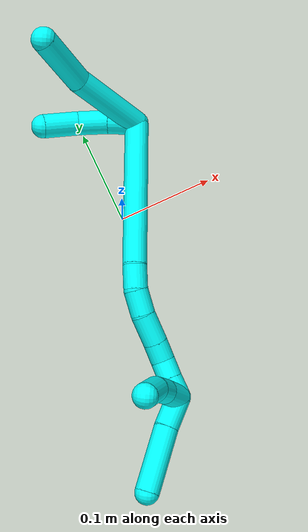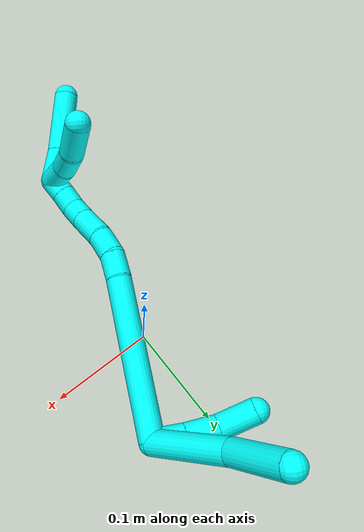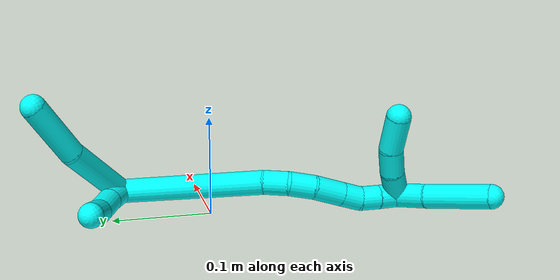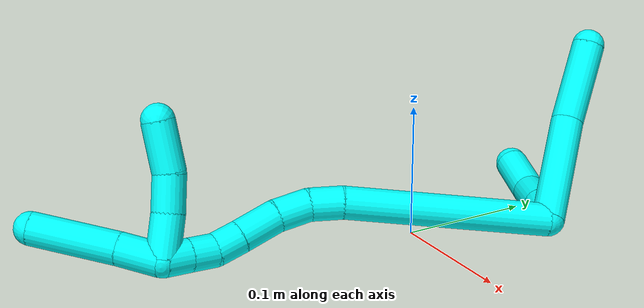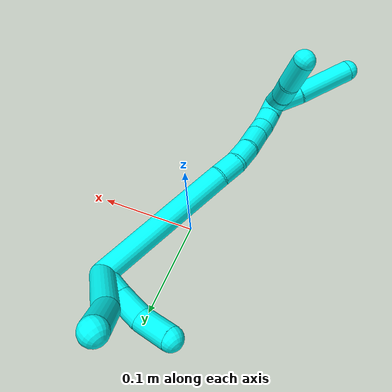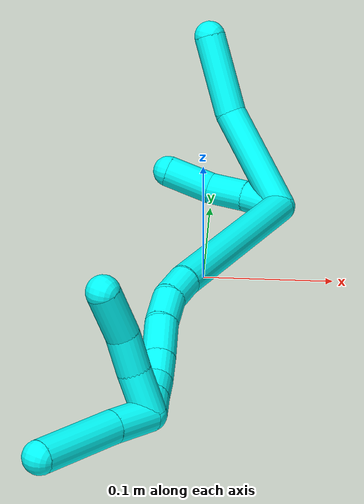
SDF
<sdf version="1.7">
 <world name="default">
  <model name="3">
   <static>0</static>
   <link name="3">
    <collision name="collision-cylinder-e_1_2_8">
     <pose>-0.030517 -0.000425 -0.030106 3.12749 -0.792118 -3.10786</pose>
     <geometry><cylinder><radius>0.0125</radius><length>0.08574</length></cylinder></geometry>
     <surface>
      <friction><ode><mu>1.16</mu><mu2>1.16</mu2><slip1>0</slip1><slip2>0</slip2></ode></friction>
      <contact><ode><kp>1e+06</kp><kd>1</kd><max_vel>0</max_vel><min_depth>0.001</min_depth></ode></contact>
     </surface>
    </collision>
    <visual name="visual-cylinder-e_1_2_8">
     <pose>-0.030517 -0.000425 -0.030106 3.12749 -0.792118 -3.10786</pose>
     <geometry><cylinder><radius>0.0125</radius><length>0.08574</length></cylinder></geometry>
     <material><ambient>0.003922 1 0.996078 1</ambient></material>
    </visual>
    <collision name="collision-cylinder-e_2_8_6">
     <pose>-0.088897 -0.001593 -0.076194 3.09512 -1.0496 -3.06135</pose>
     <geometry><cylinder><radius>0.0125</radius><length>0.06426</length></cylinder></geometry>
     <surface>
      <friction><ode><mu>1.16</mu><mu2>1.16</mu2><slip1>0</slip1><slip2>0</slip2></ode></friction>
      <contact><ode><kp>1e+06</kp><kd>1</kd><max_vel>0</max_vel><min_depth>0.001</min_depth></ode></contact>
     </surface>
    </collision>
    <visual name="visual-cylinder-e_2_8_6">
     <pose>-0.088897 -0.001593 -0.076194 3.09512 -1.0496 -3.06135</pose>
     <geometry><cylinder><radius>0.0125</radius><length>0.06426</length></cylinder></geometry>
     <material><ambient>0.003922 1 0.996078 1</ambient></material>
    </visual>
    <collision name="collision-cylinder-e_1_2_9">
     <pose>8.7e-05 -0.000559 -0.015392 3.10531 0.005655 0.309189</pose>
     <geometry><cylinder><radius>0.0125</radius><length>0.030804</length></cylinder></geometry>
     <surface>
      <friction><ode><mu>1.16</mu><mu2>1.16</mu2><slip1>0</slip1><slip2>0</slip2></ode></friction>
      <contact><ode><kp>1e+06</kp><kd>1</kd><max_vel>0</max_vel><min_depth>0.001</min_depth></ode></contact>
     </surface>
    </collision>
    <visual name="visual-cylinder-e_1_2_9">
     <pose>8.7e-05 -0.000559 -0.015392 3.10531 0.005655 0.309189</pose>
     <geometry><cylinder><radius>0.0125</radius><length>0.030804</length></cylinder></geometry>
     <material><ambient>0.003922 1 0.996078 1</ambient></material>
    </visual>
    <collision name="collision-cylinder-e_2_9_10">
     <pose>0.001306 -0.002672 -0.046521 3.04316 0.071467 1.25562</pose>
     <geometry><cylinder><radius>0.0125</radius><length>0.031709</length></cylinder></geometry>
     <surface>
      <friction><ode><mu>1.16</mu><mu2>1.16</mu2><slip1>0</slip1><slip2>0</slip2></ode></friction>
      <contact><ode><kp>1e+06</kp><kd>1</kd><max_vel>0</max_vel><min_depth>0.001</min_depth></ode></contact>
     </surface>
    </collision>
    <visual name="visual-cylinder-e_2_9_10">
     <pose>0.001306 -0.002672 -0.046521 3.04316 0.071467 1.25562</pose>
     <geometry><cylinder><radius>0.0125</radius><length>0.031709</length></cylinder></geometry>
     <material><ambient>0.003922 1 0.996078 1</ambient></material>
    </visual>
    <collision name="collision-cylinder-e_3_10_5">
     <pose>-0.000286 -0.010166 -0.079825 2.81553 -0.145873 -0.836022</pose>
     <geometry><cylinder><radius>0.0125</radius><length>0.037487</length></cylinder></geometry>
     <surface>
      <friction><ode><mu>1.16</mu><mu2>1.16</mu2><slip1>0</slip1><slip2>0</slip2></ode></friction>
      <contact><ode><kp>1e+06</kp><kd>1</kd><max_vel>0</max_vel><min_depth>0.001</min_depth></ode></contact>
     </surface>
    </collision>
    <visual name="visual-cylinder-e_3_10_5">
     <pose>-0.000286 -0.010166 -0.079825 2.81553 -0.145873 -0.836022</pose>
     <geometry><cylinder><radius>0.0125</radius><length>0.037487</length></cylinder></geometry>
     <material><ambient>0.003922 1 0.996078 1</ambient></material>
    </visual>
    <collision name="collision-cylinder-e_1_2_11">
     <pose>0.019563 -0.075158 0.005287 1.50056 0.254046 0.236968</pose>
     <geometry><cylinder><radius>0.0125</radius><length>0.155684</length></cylinder></geometry>
     <surface>
      <friction><ode><mu>1.16</mu><mu2>1.16</mu2><slip1>0</slip1><slip2>0</slip2></ode></friction>
      <contact><ode><kp>1e+06</kp><kd>1</kd><max_vel>0</max_vel><min_depth>0.001</min_depth></ode></contact>
     </surface>
    </collision>
    <visual name="visual-cylinder-e_1_2_11">
     <pose>0.019563 -0.075158 0.005287 1.50056 0.254046 0.236968</pose>
     <geometry><cylinder><radius>0.0125</radius><length>0.155684</length></cylinder></geometry>
     <material><ambient>0.003922 1 0.996078 1</ambient></material>
    </visual>
    <collision name="collision-cylinder-e_2_11_12">
     <pose>0.043935 -0.162003 0.012125 1.43888 0.387187 0.34019</pose>
     <geometry><cylinder><radius>0.0125</radius><length>0.025465</length></cylinder></geometry>
     <surface>
      <friction><ode><mu>1.16</mu><mu2>1.16</mu2><slip1>0</slip1><slip2>0</slip2></ode></friction>
      <contact><ode><kp>1e+06</kp><kd>1</kd><max_vel>0</max_vel><min_depth>0.001</min_depth></ode></contact>
     </surface>
    </collision>
    <visual name="visual-cylinder-e_2_11_12">
     <pose>0.043935 -0.162003 0.012125 1.43888 0.387187 0.34019</pose>
     <geometry><cylinder><radius>0.0125</radius><length>0.025465</length></cylinder></geometry>
     <material><ambient>0.003922 1 0.996078 1</ambient></material>
    </visual>
    <collision name="collision-cylinder-e_3_12_13">
     <pose>0.055471 -0.183947 0.018357 1.14268 0.538089 0.350866</pose>
     <geometry><cylinder><radius>0.0125</radius><length>0.026257</length></cylinder></geometry>
     <surface>
      <friction><ode><mu>1.16</mu><mu2>1.16</mu2><slip1>0</slip1><slip2>0</slip2></ode></friction>
      <contact><ode><kp>1e+06</kp><kd>1</kd><max_vel>0</max_vel><min_depth>0.001</min_depth></ode></contact>
     </surface>
    </collision>
    <visual name="visual-cylinder-e_3_12_13">
     <pose>0.055471 -0.183947 0.018357 1.14268 0.538089 0.350866</pose>
     <geometry><cylinder><radius>0.0125</radius><length>0.026257</length></cylinder></geometry>
     <material><ambient>0.003922 1 0.996078 1</ambient></material>
    </visual>
    <collision name="collision-cylinder-e_4_13_14">
     <pose>0.071609 -0.204387 0.030346 0.948299 0.643946 0.339098</pose>
     <geometry><cylinder><radius>0.0125</radius><length>0.031349</length></cylinder></geometry>
     <surface>
      <friction><ode><mu>1.16</mu><mu2>1.16</mu2><slip1>0</slip1><slip2>0</slip2></ode></friction>
      <contact><ode><kp>1e+06</kp><kd>1</kd><max_vel>0</max_vel><min_depth>0.001</min_depth></ode></contact>
     </surface>
    </collision>
    <visual name="visual-cylinder-e_4_13_14">
     <pose>0.071609 -0.204387 0.030346 0.948299 0.643946 0.339098</pose>
     <geometry><cylinder><radius>0.0125</radius><length>0.031349</length></cylinder></geometry>
     <material><ambient>0.003922 1 0.996078 1</ambient></material>
    </visual>
    <collision name="collision-cylinder-e_5_14_15">
     <pose>0.087238 -0.221608 0.042255 0.991735 0.636904 0.352961</pose>
     <geometry><cylinder><radius>0.0125</radius><length>0.020915</length></cylinder></geometry>
     <surface>
      <friction><ode><mu>1.16</mu><mu2>1.16</mu2><slip1>0</slip1><slip2>0</slip2></ode></friction>
      <contact><ode><kp>1e+06</kp><kd>1</kd><max_vel>0</max_vel><min_depth>0.001</min_depth></ode></contact>
     </surface>
    </collision>
    <visual name="visual-cylinder-e_5_14_15">
     <pose>0.087238 -0.221608 0.042255 0.991735 0.636904 0.352961</pose>
     <geometry><cylinder><radius>0.0125</radius><length>0.020915</length></cylinder></geometry>
     <material><ambient>0.003922 1 0.996078 1</ambient></material>
    </visual>
    <collision name="collision-cylinder-e_6_15_16">
     <pose>0.096665 -0.237002 0.051315 1.08068 0.326534 0.197004</pose>
     <geometry><cylinder><radius>0.0125</radius><length>0.020003</length></cylinder></geometry>
     <surface>
      <friction><ode><mu>1.16</mu><mu2>1.16</mu2><slip1>0</slip1><slip2>0</slip2></ode></friction>
      <contact><ode><kp>1e+06</kp><kd>1</kd><max_vel>0</max_vel><min_depth>0.001</min_depth></ode></contact>
     </surface>
    </collision>
    <visual name="visual-cylinder-e_6_15_16">
     <pose>0.096665 -0.237002 0.051315 1.08068 0.326534 0.197004</pose>
     <geometry><cylinder><radius>0.0125</radius><length>0.020003</length></cylinder></geometry>
     <material><ambient>0.003922 1 0.996078 1</ambient></material>
    </visual>
    <collision name="collision-cylinder-e_7_16_1">
     <pose>0.102904 -0.253687 0.060751 1.03218 0.302767 0.172679</pose>
     <geometry><cylinder><radius>0.0125</radius><length>0.020327</length></cylinder></geometry>
     <surface>
      <friction><ode><mu>1.16</mu><mu2>1.16</mu2><slip1>0</slip1><slip2>0</slip2></ode></friction>
      <contact><ode><kp>1e+06</kp><kd>1</kd><max_vel>0</max_vel><min_depth>0.001</min_depth></ode></contact>
     </surface>
    </collision>
    <visual name="visual-cylinder-e_7_16_1">
     <pose>0.102904 -0.253687 0.060751 1.03218 0.302767 0.172679</pose>
     <geometry><cylinder><radius>0.0125</radius><length>0.020327</length></cylinder></geometry>
     <material><ambient>0.003922 1 0.996078 1</ambient></material>
    </visual>
    <collision name="collision-cylinder-e_1_1_17">
     <pose>0.091581 -0.265667 0.058111 2.69442 -1.03893 -2.38466</pose>
     <geometry><cylinder><radius>0.0125</radius><length>0.033309</length></cylinder></geometry>
     <surface>
      <friction><ode><mu>1.16</mu><mu2>1.16</mu2><slip1>0</slip1><slip2>0</slip2></ode></friction>
      <contact><ode><kp>1e+06</kp><kd>1</kd><max_vel>0</max_vel><min_depth>0.001</min_depth></ode></contact>
     </surface>
    </collision>
    <visual name="visual-cylinder-e_1_1_17">
     <pose>0.091581 -0.265667 0.058111 2.69442 -1.03893 -2.38466</pose>
     <geometry><cylinder><radius>0.0125</radius><length>0.033309</length></cylinder></geometry>
     <material><ambient>0.003922 1 0.996078 1</ambient></material>
    </visual>
    <collision name="collision-cylinder-e_2_17_18">
     <pose>0.064562 -0.273829 0.045701 2.38686 -1.09149 -1.98504</pose>
     <geometry><cylinder><radius>0.0125</radius><length>0.028547</length></cylinder></geometry>
     <surface>
      <friction><ode><mu>1.16</mu><mu2>1.16</mu2><slip1>0</slip1><slip2>0</slip2></ode></friction>
      <contact><ode><kp>1e+06</kp><kd>1</kd><max_vel>0</max_vel><min_depth>0.001</min_depth></ode></contact>
     </surface>
    </collision>
    <visual name="visual-cylinder-e_2_17_18">
     <pose>0.064562 -0.273829 0.045701 2.38686 -1.09149 -1.98504</pose>
     <geometry><cylinder><radius>0.0125</radius><length>0.028547</length></cylinder></geometry>
     <material><ambient>0.003922 1 0.996078 1</ambient></material>
    </visual>
    <collision name="collision-cylinder-e_3_18_4">
     <pose>0.036538 -0.288545 0.036039 2.01574 -0.936194 -1.35092</pose>
     <geometry><cylinder><radius>0.0125</radius><length>0.038144</length></cylinder></geometry>
     <surface>
      <friction><ode><mu>1.16</mu><mu2>1.16</mu2><slip1>0</slip1><slip2>0</slip2></ode></friction>
      <contact><ode><kp>1e+06</kp><kd>1</kd><max_vel>0</max_vel><min_depth>0.001</min_depth></ode></contact>
     </surface>
    </collision>
    <visual name="visual-cylinder-e_3_18_4">
     <pose>0.036538 -0.288545 0.036039 2.01574 -0.936194 -1.35092</pose>
     <geometry><cylinder><radius>0.0125</radius><length>0.038144</length></cylinder></geometry>
     <material><ambient>0.003922 1 0.996078 1</ambient></material>
    </visual>
    <collision name="collision-cylinder-e_1_1_19">
     <pose>0.109516 -0.277338 0.060625 1.89219 0.218221 0.301554</pose>
     <geometry><cylinder><radius>0.0125</radius><length>0.033084</length></cylinder></geometry>
     <surface>
      <friction><ode><mu>1.16</mu><mu2>1.16</mu2><slip1>0</slip1><slip2>0</slip2></ode></friction>
      <contact><ode><kp>1e+06</kp><kd>1</kd><max_vel>0</max_vel><min_depth>0.001</min_depth></ode></contact>
     </surface>
    </collision>
    <visual name="visual-cylinder-e_1_1_19">
     <pose>0.109516 -0.277338 0.060625 1.89219 0.218221 0.301554</pose>
     <geometry><cylinder><radius>0.0125</radius><length>0.033084</length></cylinder></geometry>
     <material><ambient>0.003922 1 0.996078 1</ambient></material>
    </visual>
    <collision name="collision-cylinder-e_2_19_3">
     <pose>0.120409 -0.324512 0.048349 1.79237 0.22034 0.274873</pose>
     <geometry><cylinder><radius>0.0125</radius><length>0.066916</length></cylinder></geometry>
     <surface>
      <friction><ode><mu>1.16</mu><mu2>1.16</mu2><slip1>0</slip1><slip2>0</slip2></ode></friction>
      <contact><ode><kp>1e+06</kp><kd>1</kd><max_vel>0</max_vel><min_depth>0.001</min_depth></ode></contact>
     </surface>
    </collision>
    <visual name="visual-cylinder-e_2_19_3">
     <pose>0.120409 -0.324512 0.048349 1.79237 0.22034 0.274873</pose>
     <geometry><cylinder><radius>0.0125</radius><length>0.066916</length></cylinder></geometry>
     <material><ambient>0.003922 1 0.996078 1</ambient></material>
    </visual>
    <collision name="collision-sphere-3">
     <pose>0.127722 -0.356362 0.041174 0 -0 0</pose>
     <geometry><sphere><radius>0.0125</radius></sphere></geometry>
     <surface>
      <friction><ode><mu>1.16</mu><mu2>1.16</mu2><slip1>0</slip1><slip2>0</slip2></ode></friction>
      <contact><ode><kp>1e+06</kp><kd>1</kd><max_vel>0</max_vel><min_depth>0.001</min_depth></ode></contact>
     </surface>
    </collision>
    <visual name="visual-sphere-3">
     <pose>0.127722 -0.356362 0.041174 0 -0 0</pose>
     <geometry><sphere><radius>0.0125</radius></sphere></geometry>
     <material><ambient>0.003922 1 0.996078 1</ambient></material>
    </visual>
    <collision name="collision-sphere-19">
     <pose>0.113097 -0.292661 0.055524 0 -0 0</pose>
     <geometry><sphere><radius>0.0125</radius></sphere></geometry>
     <surface>
      <friction><ode><mu>1.16</mu><mu2>1.16</mu2><slip1>0</slip1><slip2>0</slip2></ode></friction>
      <contact><ode><kp>1e+06</kp><kd>1</kd><max_vel>0</max_vel><min_depth>0.001</min_depth></ode></contact>
     </surface>
    </collision>
    <visual name="visual-sphere-19">
     <pose>0.113097 -0.292661 0.055524 0 -0 0</pose>
     <geometry><sphere><radius>0.0125</radius></sphere></geometry>
     <material><ambient>0.003922 1 0.996078 1</ambient></material>
    </visual>
    <collision name="collision-sphere-5">
     <pose>-0.003011 -0.016106 -0.097393 0 -0 0</pose>
     <geometry><sphere><radius>0.0125</radius></sphere></geometry>
     <surface>
      <friction><ode><mu>1.16</mu><mu2>1.16</mu2><slip1>0</slip1><slip2>0</slip2></ode></friction>
      <contact><ode><kp>1e+06</kp><kd>1</kd><max_vel>0</max_vel><min_depth>0.001</min_depth></ode></contact>
     </surface>
    </collision>
    <visual name="visual-sphere-5">
     <pose>-0.003011 -0.016106 -0.097393 0 -0 0</pose>
     <geometry><sphere><radius>0.0125</radius></sphere></geometry>
     <material><ambient>0.003922 1 0.996078 1</ambient></material>
    </visual>
    <collision name="collision-sphere-10">
     <pose>0.002438 -0.004226 -0.062258 0 -0 0</pose>
     <geometry><sphere><radius>0.0125</radius></sphere></geometry>
     <surface>
      <friction><ode><mu>1.16</mu><mu2>1.16</mu2><slip1>0</slip1><slip2>0</slip2></ode></friction>
      <contact><ode><kp>1e+06</kp><kd>1</kd><max_vel>0</max_vel><min_depth>0.001</min_depth></ode></contact>
     </surface>
    </collision>
    <visual name="visual-sphere-10">
     <pose>0.002438 -0.004226 -0.062258 0 -0 0</pose>
     <geometry><sphere><radius>0.0125</radius></sphere></geometry>
     <material><ambient>0.003922 1 0.996078 1</ambient></material>
    </visual>
    <collision name="collision-sphere-6">
     <pose>-0.116761 -0.002336 -0.092174 0 -0 0</pose>
     <geometry><sphere><radius>0.0125</radius></sphere></geometry>
     <surface>
      <friction><ode><mu>1.16</mu><mu2>1.16</mu2><slip1>0</slip1><slip2>0</slip2></ode></friction>
      <contact><ode><kp>1e+06</kp><kd>1</kd><max_vel>0</max_vel><min_depth>0.001</min_depth></ode></contact>
     </surface>
    </collision>
    <visual name="visual-sphere-6">
     <pose>-0.116761 -0.002336 -0.092174 0 -0 0</pose>
     <geometry><sphere><radius>0.0125</radius></sphere></geometry>
     <material><ambient>0.003922 1 0.996078 1</ambient></material>
    </visual>
    <collision name="collision-sphere-9">
     <pose>0.000174 -0.001117 -0.030783 0 -0 0</pose>
     <geometry><sphere><radius>0.0125</radius></sphere></geometry>
     <surface>
      <friction><ode><mu>1.16</mu><mu2>1.16</mu2><slip1>0</slip1><slip2>0</slip2></ode></friction>
      <contact><ode><kp>1e+06</kp><kd>1</kd><max_vel>0</max_vel><min_depth>0.001</min_depth></ode></contact>
     </surface>
    </collision>
    <visual name="visual-sphere-9">
     <pose>0.000174 -0.001117 -0.030783 0 -0 0</pose>
     <geometry><sphere><radius>0.0125</radius></sphere></geometry>
     <material><ambient>0.003922 1 0.996078 1</ambient></material>
    </visual>
    <collision name="collision-sphere-2">
     <geometry><sphere><radius>0.0125</radius></sphere></geometry>
     <surface>
      <friction><ode><mu>1.16</mu><mu2>1.16</mu2><slip1>0</slip1><slip2>0</slip2></ode></friction>
      <contact><ode><kp>1e+06</kp><kd>1</kd><max_vel>0</max_vel><min_depth>0.001</min_depth></ode></contact>
     </surface>
    </collision>
    <visual name="visual-sphere-2">
     <geometry><sphere><radius>0.0125</radius></sphere></geometry>
     <material><ambient>0.003922 1 0.996078 1</ambient></material>
    </visual>
    <collision name="collision-sphere-8">
     <pose>-0.061034 -0.000849 -0.060213 0 -0 0</pose>
     <geometry><sphere><radius>0.0125</radius></sphere></geometry>
     <surface>
      <friction><ode><mu>1.16</mu><mu2>1.16</mu2><slip1>0</slip1><slip2>0</slip2></ode></friction>
      <contact><ode><kp>1e+06</kp><kd>1</kd><max_vel>0</max_vel><min_depth>0.001</min_depth></ode></contact>
     </surface>
    </collision>
    <visual name="visual-sphere-8">
     <pose>-0.061034 -0.000849 -0.060213 0 -0 0</pose>
     <geometry><sphere><radius>0.0125</radius></sphere></geometry>
     <material><ambient>0.003922 1 0.996078 1</ambient></material>
    </visual>
    <collision name="collision-sphere-11">
     <pose>0.039127 -0.150316 0.010575 0 -0 0</pose>
     <geometry><sphere><radius>0.0125</radius></sphere></geometry>
     <surface>
      <friction><ode><mu>1.16</mu><mu2>1.16</mu2><slip1>0</slip1><slip2>0</slip2></ode></friction>
      <contact><ode><kp>1e+06</kp><kd>1</kd><max_vel>0</max_vel><min_depth>0.001</min_depth></ode></contact>
     </surface>
    </collision>
    <visual name="visual-sphere-11">
     <pose>0.039127 -0.150316 0.010575 0 -0 0</pose>
     <geometry><sphere><radius>0.0125</radius></sphere></geometry>
     <material><ambient>0.003922 1 0.996078 1</ambient></material>
    </visual>
    <collision name="collision-sphere-12">
     <pose>0.048742 -0.173691 0.013676 0 -0 0</pose>
     <geometry><sphere><radius>0.0125</radius></sphere></geometry>
     <surface>
      <friction><ode><mu>1.16</mu><mu2>1.16</mu2><slip1>0</slip1><slip2>0</slip2></ode></friction>
      <contact><ode><kp>1e+06</kp><kd>1</kd><max_vel>0</max_vel><min_depth>0.001</min_depth></ode></contact>
     </surface>
    </collision>
    <visual name="visual-sphere-12">
     <pose>0.048742 -0.173691 0.013676 0 -0 0</pose>
     <geometry><sphere><radius>0.0125</radius></sphere></geometry>
     <material><ambient>0.003922 1 0.996078 1</ambient></material>
    </visual>
    <collision name="collision-sphere-13">
     <pose>0.062199 -0.194203 0.023037 0 -0 0</pose>
     <geometry><sphere><radius>0.0125</radius></sphere></geometry>
     <surface>
      <friction><ode><mu>1.16</mu><mu2>1.16</mu2><slip1>0</slip1><slip2>0</slip2></ode></friction>
      <contact><ode><kp>1e+06</kp><kd>1</kd><max_vel>0</max_vel><min_depth>0.001</min_depth></ode></contact>
     </surface>
    </collision>
    <visual name="visual-sphere-13">
     <pose>0.062199 -0.194203 0.023037 0 -0 0</pose>
     <geometry><sphere><radius>0.0125</radius></sphere></geometry>
     <material><ambient>0.003922 1 0.996078 1</ambient></material>
    </visual>
    <collision name="collision-sphere-14">
     <pose>0.081019 -0.214571 0.037655 0 -0 0</pose>
     <geometry><sphere><radius>0.0125</radius></sphere></geometry>
     <surface>
      <friction><ode><mu>1.16</mu><mu2>1.16</mu2><slip1>0</slip1><slip2>0</slip2></ode></friction>
      <contact><ode><kp>1e+06</kp><kd>1</kd><max_vel>0</max_vel><min_depth>0.001</min_depth></ode></contact>
     </surface>
    </collision>
    <visual name="visual-sphere-14">
     <pose>0.081019 -0.214571 0.037655 0 -0 0</pose>
     <geometry><sphere><radius>0.0125</radius></sphere></geometry>
     <material><ambient>0.003922 1 0.996078 1</ambient></material>
    </visual>
    <collision name="collision-sphere-15">
     <pose>0.093457 -0.228644 0.046856 0 -0 0</pose>
     <geometry><sphere><radius>0.0125</radius></sphere></geometry>
     <surface>
      <friction><ode><mu>1.16</mu><mu2>1.16</mu2><slip1>0</slip1><slip2>0</slip2></ode></friction>
      <contact><ode><kp>1e+06</kp><kd>1</kd><max_vel>0</max_vel><min_depth>0.001</min_depth></ode></contact>
     </surface>
    </collision>
    <visual name="visual-sphere-15">
     <pose>0.093457 -0.228644 0.046856 0 -0 0</pose>
     <geometry><sphere><radius>0.0125</radius></sphere></geometry>
     <material><ambient>0.003922 1 0.996078 1</ambient></material>
    </visual>
    <collision name="collision-sphere-16">
     <pose>0.099874 -0.24536 0.055774 0 -0 0</pose>
     <geometry><sphere><radius>0.0125</radius></sphere></geometry>
     <surface>
      <friction><ode><mu>1.16</mu><mu2>1.16</mu2><slip1>0</slip1><slip2>0</slip2></ode></friction>
      <contact><ode><kp>1e+06</kp><kd>1</kd><max_vel>0</max_vel><min_depth>0.001</min_depth></ode></contact>
     </surface>
    </collision>
    <visual name="visual-sphere-16">
     <pose>0.099874 -0.24536 0.055774 0 -0 0</pose>
     <geometry><sphere><radius>0.0125</radius></sphere></geometry>
     <material><ambient>0.003922 1 0.996078 1</ambient></material>
    </visual>
    <collision name="collision-sphere-1">
     <pose>0.105934 -0.262015 0.065727 0 -0 0</pose>
     <geometry><sphere><radius>0.0125</radius></sphere></geometry>
     <surface>
      <friction><ode><mu>1.16</mu><mu2>1.16</mu2><slip1>0</slip1><slip2>0</slip2></ode></friction>
      <contact><ode><kp>1e+06</kp><kd>1</kd><max_vel>0</max_vel><min_depth>0.001</min_depth></ode></contact>
     </surface>
    </collision>
    <visual name="visual-sphere-1">
     <pose>0.105934 -0.262015 0.065727 0 -0 0</pose>
     <geometry><sphere><radius>0.0125</radius></sphere></geometry>
     <material><ambient>0.003922 1 0.996078 1</ambient></material>
    </visual>
    <collision name="collision-sphere-18">
     <pose>0.051896 -0.278339 0.040905 0 -0 0</pose>
     <geometry><sphere><radius>0.0125</radius></sphere></geometry>
     <surface>
      <friction><ode><mu>1.16</mu><mu2>1.16</mu2><slip1>0</slip1><slip2>0</slip2></ode></friction>
      <contact><ode><kp>1e+06</kp><kd>1</kd><max_vel>0</max_vel><min_depth>0.001</min_depth></ode></contact>
     </surface>
    </collision>
    <visual name="visual-sphere-18">
     <pose>0.051896 -0.278339 0.040905 0 -0 0</pose>
     <geometry><sphere><radius>0.0125</radius></sphere></geometry>
     <material><ambient>0.003922 1 0.996078 1</ambient></material>
    </visual>
    <collision name="collision-sphere-17">
     <pose>0.077227 -0.26932 0.050496 0 -0 0</pose>
     <geometry><sphere><radius>0.0125</radius></sphere></geometry>
     <surface>
      <friction><ode><mu>1.16</mu><mu2>1.16</mu2><slip1>0</slip1><slip2>0</slip2></ode></friction>
      <contact><ode><kp>1e+06</kp><kd>1</kd><max_vel>0</max_vel><min_depth>0.001</min_depth></ode></contact>
     </surface>
    </collision>
    <visual name="visual-sphere-17">
     <pose>0.077227 -0.26932 0.050496 0 -0 0</pose>
     <geometry><sphere><radius>0.0125</radius></sphere></geometry>
     <material><ambient>0.003922 1 0.996078 1</ambient></material>
    </visual>
    <collision name="collision-sphere-4">
     <pose>0.021179 -0.298751 0.031172 0 -0 0</pose>
     <geometry><sphere><radius>0.0125</radius></sphere></geometry>
     <surface>
      <friction><ode><mu>1.16</mu><mu2>1.16</mu2><slip1>0</slip1><slip2>0</slip2></ode></friction>
      <contact><ode><kp>1e+06</kp><kd>1</kd><max_vel>0</max_vel><min_depth>0.001</min_depth></ode></contact>
     </surface>
    </collision>
    <visual name="visual-sphere-4">
     <pose>0.021179 -0.298751 0.031172 0 -0 0</pose>
     <geometry><sphere><radius>0.0125</radius></sphere></geometry>
     <material><ambient>0.003922 1 0.996078 1</ambient></material>
    </visual>
    <inertial>
     <pose>0.031184 -0.134374 0.004196 0 -0 0</pose>
     <mass>0.75</mass>
     <inertia>
      <ixx>0.000369</ixx>
      <ixy>0</ixy>
      <ixz>0</ixz>
      <iyy>0.00017</iyy>
      <iyz>0</iyz>
      <izz>0.000323</izz>
     </inertia>
    </inertial>
   </link>
   <pose>0.05631 0.085462 0.012907 -1.5432 1.1903 -2.06326</pose>
  </model>
 </world>
</sdf>
